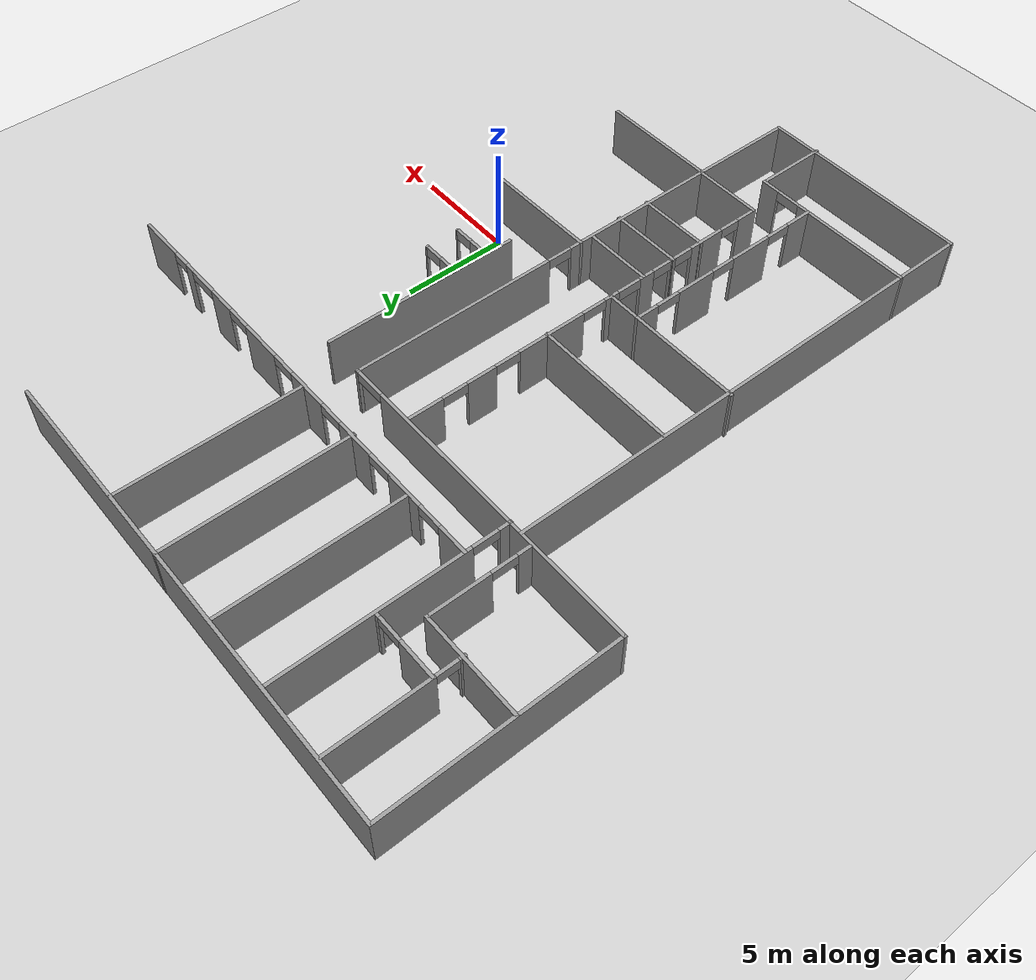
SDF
<sdf version="1.6">
 <world name="default">
  <model name="ground_plane">
   <static>1</static>
   <link name="link">
    <collision name="collision">
     <geometry><plane><normal>0 0 1</normal><size>100 100</size></plane></geometry>
     <surface><friction><ode><mu>100</mu><mu2>50</mu2></ode></friction></surface>
    </collision>
    <visual name="visual">
     <cast_shadows>0</cast_shadows>
     <geometry><plane><normal>0 0 1</normal><size>100 100</size></plane></geometry>
     <material>
      <script><uri>file://media/materials/scripts/gazebo.material</uri><name>Gazebo/Grey</name></script>
     </material>
    </visual>
   </link>
  </model>
  <model name="ed21">
   <pose>2.72337 5.84388 0 0 -0 0</pose>
   <link name="Wall_109">
    <pose>-3.95944 -3.32554 0 0 -0 0</pose>
    <visual name="Wall_109_Visual_0">
     <pose>-0.486206 0 1.25 0 -0 0</pose>
     <geometry><box><size>1.02759 0.15 2.5</size></box></geometry>
     <material>
      <script><uri>file://media/materials/scripts/gazebo.material</uri><name>Gazebo/Grey</name></script>
      <ambient>1 1 1 1</ambient>
     </material>
     <meta><layer>0</layer></meta>
    </visual>
    <collision name="Wall_109_Collision_0">
     <geometry><box><size>1.02759 0.15 2.5</size></box></geometry>
     <pose>-0.486206 0 1.25 0 -0 0</pose>
    </collision>
    <visual name="Wall_109_Visual_1">
     <pose>0.963794 0 1.25 0 -0 0</pose>
     <geometry><box><size>0.072411 0.15 2.5</size></box></geometry>
     <material>
      <script><uri>file://media/materials/scripts/gazebo.material</uri><name>Gazebo/Grey</name></script>
      <ambient>1 1 1 1</ambient>
     </material>
     <meta><layer>0</layer></meta>
    </visual>
    <collision name="Wall_109_Collision_1">
     <geometry><box><size>0.072411 0.15 2.5</size></box></geometry>
     <pose>0.963794 0 1.25 0 -0 0</pose>
    </collision>
    <visual name="Wall_109_Visual_2">
     <pose>0.477589 0 2.25 0 -0 0</pose>
     <geometry><box><size>0.9 0.15 0.5</size></box></geometry>
     <material>
      <script><uri>file://media/materials/scripts/gazebo.material</uri><name>Gazebo/Grey</name></script>
      <ambient>1 1 1 1</ambient>
     </material>
     <meta><layer>0</layer></meta>
    </visual>
    <collision name="Wall_109_Collision_2">
     <geometry><box><size>0.9 0.15 0.5</size></box></geometry>
     <pose>0.477589 0 2.25 0 -0 0</pose>
    </collision>
   </link>
   <link name="Wall_111">
    <pose>-3.95944 -1.68148 0 0 -0 0</pose>
    <visual name="Wall_111_Visual_0">
     <pose>-0.494901 0 1.25 0 -0 0</pose>
     <geometry><box><size>1.0102 0.15 2.5</size></box></geometry>
     <material>
      <script><uri>file://media/materials/scripts/gazebo.material</uri><name>Gazebo/Grey</name></script>
      <ambient>1 1 1 1</ambient>
     </material>
     <meta><layer>0</layer></meta>
    </visual>
    <collision name="Wall_111_Collision_0">
     <geometry><box><size>1.0102 0.15 2.5</size></box></geometry>
     <pose>-0.494901 0 1.25 0 -0 0</pose>
    </collision>
    <visual name="Wall_111_Visual_1">
     <pose>0.955099 0 1.25 0 -0 0</pose>
     <geometry><box><size>0.089803 0.15 2.5</size></box></geometry>
     <material>
      <script><uri>file://media/materials/scripts/gazebo.material</uri><name>Gazebo/Grey</name></script>
      <ambient>1 1 1 1</ambient>
     </material>
     <meta><layer>0</layer></meta>
    </visual>
    <collision name="Wall_111_Collision_1">
     <geometry><box><size>0.089803 0.15 2.5</size></box></geometry>
     <pose>0.955099 0 1.25 0 -0 0</pose>
    </collision>
    <visual name="Wall_111_Visual_2">
     <pose>0.460197 0 2.25 0 -0 0</pose>
     <geometry><box><size>0.9 0.15 0.5</size></box></geometry>
     <material>
      <script><uri>file://media/materials/scripts/gazebo.material</uri><name>Gazebo/Grey</name></script>
      <ambient>1 1 1 1</ambient>
     </material>
     <meta><layer>0</layer></meta>
    </visual>
    <collision name="Wall_111_Collision_2">
     <geometry><box><size>0.9 0.15 0.5</size></box></geometry>
     <pose>0.460197 0 2.25 0 -0 0</pose>
    </collision>
   </link>
   <link name="Wall_18">
    <collision name="Wall_18_Collision">
     <geometry><box><size>5.75 0.15 2.5</size></box></geometry>
     <pose>0 0 1.25 0 -0 0</pose>
    </collision>
    <visual name="Wall_18_Visual">
     <pose>0 0 1.25 0 -0 0</pose>
     <geometry><box><size>5.75 0.15 2.5</size></box></geometry>
     <material>
      <script><uri>file://media/materials/scripts/gazebo.material</uri><name>Gazebo/Grey</name></script>
      <ambient>1 1 1 1</ambient>
     </material>
     <meta><layer>0</layer></meta>
    </visual>
    <pose>-4.15144 -14.1344 0 0 -0 3.14159</pose>
   </link>
   <link name="Wall_2">
    <collision name="Wall_2_Collision">
     <geometry><box><size>10.25 0.15 2.5</size></box></geometry>
     <pose>0 0 1.25 0 -0 0</pose>
    </collision>
    <visual name="Wall_2_Visual">
     <pose>0 0 1.25 0 -0 0</pose>
     <geometry><box><size>10.25 0.15 2.5</size></box></geometry>
     <material>
      <script><uri>file://media/materials/scripts/gazebo.material</uri><name>Gazebo/Grey</name></script>
      <ambient>1 1 1 1</ambient>
     </material>
     <meta><layer>0</layer></meta>
    </visual>
    <pose>-12.0075 -19.1016 0 0 -0 0</pose>
   </link>
   <link name="Wall_23">
    <collision name="Wall_23_Collision">
     <geometry><box><size>5.75 0.15 2.5</size></box></geometry>
     <pose>0 0 1.25 0 -0 0</pose>
    </collision>
    <visual name="Wall_23_Visual">
     <pose>0 0 1.25 0 -0 0</pose>
     <geometry><box><size>5.75 0.15 2.5</size></box></geometry>
     <material>
      <script><uri>file://media/materials/scripts/gazebo.material</uri><name>Gazebo/Grey</name></script>
      <ambient>1 1 1 1</ambient>
     </material>
     <meta><layer>0</layer></meta>
    </visual>
    <pose>-4.15752 -6.90158 0 0 -0 3.14159</pose>
   </link>
   <link name="Wall_3">
    <pose>-6.95752 -7.17658 0 0 -0 1.5708</pose>
    <visual name="Wall_3_Visual_0">
     <pose>-5.57033 0 1.25 0 -0 0</pose>
     <geometry><box><size>12.8593 0.15 2.5</size></box></geometry>
     <material>
      <script><uri>file://media/materials/scripts/gazebo.material</uri><name>Gazebo/Grey</name></script>
      <ambient>1 1 1 1</ambient>
     </material>
     <meta><layer>0</layer></meta>
    </visual>
    <collision name="Wall_3_Collision_0">
     <geometry><box><size>12.8593 0.15 2.5</size></box></geometry>
     <pose>-5.57033 0 1.25 0 -0 0</pose>
    </collision>
    <visual name="Wall_3_Visual_1">
     <pose>7.02967 0 1.25 0 -0 0</pose>
     <geometry><box><size>9.94066 0.15 2.5</size></box></geometry>
     <material>
      <script><uri>file://media/materials/scripts/gazebo.material</uri><name>Gazebo/Grey</name></script>
      <ambient>1 1 1 1</ambient>
     </material>
     <meta><layer>0</layer></meta>
    </visual>
    <collision name="Wall_3_Collision_1">
     <geometry><box><size>9.94066 0.15 2.5</size></box></geometry>
     <pose>7.02967 0 1.25 0 -0 0</pose>
    </collision>
    <visual name="Wall_3_Visual_2">
     <pose>1.45934 0 2.25 0 -0 0</pose>
     <geometry><box><size>1.2 0.15 0.5</size></box></geometry>
     <material>
      <script><uri>file://media/materials/scripts/gazebo.material</uri><name>Gazebo/Grey</name></script>
      <ambient>1 1 1 1</ambient>
     </material>
     <meta><layer>0</layer></meta>
    </visual>
    <collision name="Wall_3_Collision_2">
     <geometry><box><size>1.2 0.15 0.5</size></box></geometry>
     <pose>1.45934 0 2.25 0 -0 0</pose>
    </collision>
   </link>
   <link name="Wall_31">
    <collision name="Wall_31_Collision">
     <geometry><box><size>24 0.15 2.5</size></box></geometry>
     <pose>0 0 1.25 0 -0 0</pose>
    </collision>
    <visual name="Wall_31_Visual">
     <pose>0 0 1.25 0 -0 0</pose>
     <geometry><box><size>24 0.15 2.5</size></box></geometry>
     <material>
      <script><uri>file://media/materials/scripts/gazebo.material</uri><name>Gazebo/Grey</name></script>
      <ambient>1 1 1 1</ambient>
     </material>
     <meta><layer>0</layer></meta>
    </visual>
    <pose>-17.0575 -7.17658 0 0 -0 1.5708</pose>
   </link>
   <link name="Wall_33">
    <pose>-13.1325 -15.8484 0 0 -0 0</pose>
    <visual name="Wall_33_Visual_0">
     <pose>-1.06245 0 1.25 0 -0 0</pose>
     <geometry><box><size>5.8751 0.15 2.5</size></box></geometry>
     <material>
      <script><uri>file://media/materials/scripts/gazebo.material</uri><name>Gazebo/Grey</name></script>
      <ambient>1 1 1 1</ambient>
     </material>
     <meta><layer>0</layer></meta>
    </visual>
    <collision name="Wall_33_Collision_0">
     <geometry><box><size>5.8751 0.15 2.5</size></box></geometry>
     <pose>-1.06245 0 1.25 0 -0 0</pose>
    </collision>
    <visual name="Wall_33_Visual_1">
     <pose>3.53755 0 1.25 0 -0 0</pose>
     <geometry><box><size>0.924895 0.15 2.5</size></box></geometry>
     <material>
      <script><uri>file://media/materials/scripts/gazebo.material</uri><name>Gazebo/Grey</name></script>
      <ambient>1 1 1 1</ambient>
     </material>
     <meta><layer>0</layer></meta>
    </visual>
    <collision name="Wall_33_Collision_1">
     <geometry><box><size>0.924895 0.15 2.5</size></box></geometry>
     <pose>3.53755 0 1.25 0 -0 0</pose>
    </collision>
    <visual name="Wall_33_Visual_2">
     <pose>2.47511 0 2.25 0 -0 0</pose>
     <geometry><box><size>1.2 0.15 0.5</size></box></geometry>
     <material>
      <script><uri>file://media/materials/scripts/gazebo.material</uri><name>Gazebo/Grey</name></script>
      <ambient>1 1 1 1</ambient>
     </material>
     <meta><layer>0</layer></meta>
    </visual>
    <collision name="Wall_33_Collision_2">
     <geometry><box><size>1.2 0.15 0.5</size></box></geometry>
     <pose>2.47511 0 2.25 0 -0 0</pose>
    </collision>
   </link>
   <link name="Wall_34">
    <collision name="Wall_34_Collision">
     <geometry><box><size>3.5 0.15 2.5</size></box></geometry>
     <pose>0 0 1.25 0 -0 0</pose>
    </collision>
    <visual name="Wall_34_Visual">
     <pose>0 0 1.25 0 -0 0</pose>
     <geometry><box><size>3.5 0.15 2.5</size></box></geometry>
     <material>
      <script><uri>file://media/materials/scripts/gazebo.material</uri><name>Gazebo/Grey</name></script>
      <ambient>1 1 1 1</ambient>
     </material>
     <meta><layer>0</layer></meta>
    </visual>
    <pose>-9.20752 -17.5234 0 0 0 -1.5708</pose>
   </link>
   <link name="Wall_36">
    <pose>-11.8105 -10.7984 0 0 -0 1.5708</pose>
    <visual name="Wall_36_Visual_0">
     <pose>-4.43495 0 1.25 0 -0 0</pose>
     <geometry><box><size>1.3801 0.15 2.5</size></box></geometry>
     <material>
      <script><uri>file://media/materials/scripts/gazebo.material</uri><name>Gazebo/Grey</name></script>
      <ambient>1 1 1 1</ambient>
     </material>
     <meta><layer>0</layer></meta>
    </visual>
    <collision name="Wall_36_Collision_0">
     <geometry><box><size>1.3801 0.15 2.5</size></box></geometry>
     <pose>-4.43495 0 1.25 0 -0 0</pose>
    </collision>
    <visual name="Wall_36_Visual_1">
     <pose>-1.48402 0 1.25 0 -0 0</pose>
     <geometry><box><size>2.12174 0.15 2.5</size></box></geometry>
     <material>
      <script><uri>file://media/materials/scripts/gazebo.material</uri><name>Gazebo/Grey</name></script>
      <ambient>1 1 1 1</ambient>
     </material>
     <meta><layer>0</layer></meta>
    </visual>
    <collision name="Wall_36_Collision_1">
     <geometry><box><size>2.12174 0.15 2.5</size></box></geometry>
     <pose>-1.48402 0 1.25 0 -0 0</pose>
    </collision>
    <visual name="Wall_36_Visual_2">
     <pose>1.75945 0 1.25 0 -0 0</pose>
     <geometry><box><size>1.96522 0.15 2.5</size></box></geometry>
     <material>
      <script><uri>file://media/materials/scripts/gazebo.material</uri><name>Gazebo/Grey</name></script>
      <ambient>1 1 1 1</ambient>
     </material>
     <meta><layer>0</layer></meta>
    </visual>
    <collision name="Wall_36_Collision_2">
     <geometry><box><size>1.96522 0.15 2.5</size></box></geometry>
     <pose>1.75945 0 1.25 0 -0 0</pose>
    </collision>
    <visual name="Wall_36_Visual_3">
     <pose>4.53353 0 1.25 0 -0 0</pose>
     <geometry><box><size>1.18294 0.15 2.5</size></box></geometry>
     <material>
      <script><uri>file://media/materials/scripts/gazebo.material</uri><name>Gazebo/Grey</name></script>
      <ambient>1 1 1 1</ambient>
     </material>
     <meta><layer>0</layer></meta>
    </visual>
    <collision name="Wall_36_Collision_3">
     <geometry><box><size>1.18294 0.15 2.5</size></box></geometry>
     <pose>4.53353 0 1.25 0 -0 0</pose>
    </collision>
    <visual name="Wall_36_Visual_4">
     <pose>-3.14489 0 2.25 0 -0 0</pose>
     <geometry><box><size>1.2 0.15 0.5</size></box></geometry>
     <material>
      <script><uri>file://media/materials/scripts/gazebo.material</uri><name>Gazebo/Grey</name></script>
      <ambient>1 1 1 1</ambient>
     </material>
     <meta><layer>0</layer></meta>
    </visual>
    <collision name="Wall_36_Collision_4">
     <geometry><box><size>1.2 0.15 0.5</size></box></geometry>
     <pose>-3.14489 0 2.25 0 -0 0</pose>
    </collision>
    <visual name="Wall_36_Visual_5">
     <pose>0.176845 0 2.25 0 -0 0</pose>
     <geometry><box><size>1.2 0.15 0.5</size></box></geometry>
     <material>
      <script><uri>file://media/materials/scripts/gazebo.material</uri><name>Gazebo/Grey</name></script>
      <ambient>1 1 1 1</ambient>
     </material>
     <meta><layer>0</layer></meta>
    </visual>
    <collision name="Wall_36_Collision_5">
     <geometry><box><size>1.2 0.15 0.5</size></box></geometry>
     <pose>0.176845 0 2.25 0 -0 0</pose>
    </collision>
    <visual name="Wall_36_Visual_6">
     <pose>3.34206 0 2.25 0 -0 0</pose>
     <geometry><box><size>1.2 0.15 0.5</size></box></geometry>
     <material>
      <script><uri>file://media/materials/scripts/gazebo.material</uri><name>Gazebo/Grey</name></script>
      <ambient>1 1 1 1</ambient>
     </material>
     <meta><layer>0</layer></meta>
    </visual>
    <collision name="Wall_36_Collision_6">
     <geometry><box><size>1.2 0.15 0.5</size></box></geometry>
     <pose>3.34206 0 2.25 0 -0 0</pose>
    </collision>
   </link>
   <link name="Wall_37">
    <collision name="Wall_37_Collision">
     <geometry><box><size>5.5 0.15 2.5</size></box></geometry>
     <pose>0 0 1.25 0 -0 0</pose>
    </collision>
    <visual name="Wall_37_Visual">
     <pose>0 0 1.25 0 -0 0</pose>
     <geometry><box><size>5.5 0.15 2.5</size></box></geometry>
     <material>
      <script><uri>file://media/materials/scripts/gazebo.material</uri><name>Gazebo/Grey</name></script>
      <ambient>1 1 1 1</ambient>
     </material>
     <meta><layer>0</layer></meta>
    </visual>
    <pose>-14.4855 -5.74843 0 0 -0 3.14159</pose>
   </link>
   <link name="Wall_39">
    <collision name="Wall_39_Collision">
     <geometry><box><size>1.75 0.15 2.5</size></box></geometry>
     <pose>0 0 1.25 0 -0 0</pose>
    </collision>
    <visual name="Wall_39_Visual">
     <pose>0 0 1.25 0 -0 0</pose>
     <geometry><box><size>1.75 0.15 2.5</size></box></geometry>
     <material>
      <script><uri>file://media/materials/scripts/gazebo.material</uri><name>Gazebo/Grey</name></script>
      <ambient>1 1 1 1</ambient>
     </material>
     <meta><layer>0</layer></meta>
    </visual>
    <pose>-11.0105 -5.74843 0 0 -0 0</pose>
   </link>
   <link name="Wall_4">
    <pose>-14.7575 4.74842 0 0 -0 3.14159</pose>
    <visual name="Wall_4_Visual_0">
     <pose>-7.79734 0 1.25 0 -0 0</pose>
     <geometry><box><size>0.15533 0.15 2.5</size></box></geometry>
     <material>
      <script><uri>file://media/materials/scripts/gazebo.material</uri><name>Gazebo/Grey</name></script>
      <ambient>1 1 1 1</ambient>
     </material>
     <meta><layer>0</layer></meta>
    </visual>
    <collision name="Wall_4_Collision_0">
     <geometry><box><size>0.15533 0.15 2.5</size></box></geometry>
     <pose>-7.79734 0 1.25 0 -0 0</pose>
    </collision>
    <visual name="Wall_4_Visual_1">
     <pose>0.827665 0 1.25 0 -0 0</pose>
     <geometry><box><size>14.0947 0.15 2.5</size></box></geometry>
     <material>
      <script><uri>file://media/materials/scripts/gazebo.material</uri><name>Gazebo/Grey</name></script>
      <ambient>1 1 1 1</ambient>
     </material>
     <meta><layer>0</layer></meta>
    </visual>
    <collision name="Wall_4_Collision_1">
     <geometry><box><size>14.0947 0.15 2.5</size></box></geometry>
     <pose>0.827665 0 1.25 0 -0 0</pose>
    </collision>
    <visual name="Wall_4_Visual_2">
     <pose>-6.96967 0 2.25 0 -0 0</pose>
     <geometry><box><size>1.5 0.15 0.5</size></box></geometry>
     <material>
      <script><uri>file://media/materials/scripts/gazebo.material</uri><name>Gazebo/Grey</name></script>
      <ambient>1 1 1 1</ambient>
     </material>
     <meta><layer>0</layer></meta>
    </visual>
    <collision name="Wall_4_Collision_2">
     <geometry><box><size>1.5 0.15 0.5</size></box></geometry>
     <pose>-6.96967 0 2.25 0 -0 0</pose>
    </collision>
   </link>
   <link name="Wall_40">
    <pose>-10.2105 -9.92343 0 0 0 -1.5708</pose>
    <visual name="Wall_40_Visual_0">
     <pose>-4.01505 0 1.25 0 -0 0</pose>
     <geometry><box><size>0.469895 0.15 2.5</size></box></geometry>
     <material>
      <script><uri>file://media/materials/scripts/gazebo.material</uri><name>Gazebo/Grey</name></script>
      <ambient>1 1 1 1</ambient>
     </material>
     <meta><layer>0</layer></meta>
    </visual>
    <collision name="Wall_40_Collision_0">
     <geometry><box><size>0.469895 0.15 2.5</size></box></geometry>
     <pose>-4.01505 0 1.25 0 -0 0</pose>
    </collision>
    <visual name="Wall_40_Visual_1">
     <pose>-2.19967 0 1.25 0 -0 0</pose>
     <geometry><box><size>0.760869 0.15 2.5</size></box></geometry>
     <material>
      <script><uri>file://media/materials/scripts/gazebo.material</uri><name>Gazebo/Grey</name></script>
      <ambient>1 1 1 1</ambient>
     </material>
     <meta><layer>0</layer></meta>
    </visual>
    <collision name="Wall_40_Collision_1">
     <geometry><box><size>0.760869 0.15 2.5</size></box></geometry>
     <pose>-2.19967 0 1.25 0 -0 0</pose>
    </collision>
    <visual name="Wall_40_Visual_2">
     <pose>-0.719236 0 1.25 0 -0 0</pose>
     <geometry><box><size>0.2 0.15 2.5</size></box></geometry>
     <material>
      <script><uri>file://media/materials/scripts/gazebo.material</uri><name>Gazebo/Grey</name></script>
      <ambient>1 1 1 1</ambient>
     </material>
     <meta><layer>0</layer></meta>
    </visual>
    <collision name="Wall_40_Collision_2">
     <geometry><box><size>0.2 0.15 2.5</size></box></geometry>
     <pose>-0.719236 0 1.25 0 -0 0</pose>
    </collision>
    <visual name="Wall_40_Visual_3">
     <pose>1.28076 0 1.25 0 -0 0</pose>
     <geometry><box><size>1.8 0.15 2.5</size></box></geometry>
     <material>
      <script><uri>file://media/materials/scripts/gazebo.material</uri><name>Gazebo/Grey</name></script>
      <ambient>1 1 1 1</ambient>
     </material>
     <meta><layer>0</layer></meta>
    </visual>
    <collision name="Wall_40_Collision_3">
     <geometry><box><size>1.8 0.15 2.5</size></box></geometry>
     <pose>1.28076 0 1.25 0 -0 0</pose>
    </collision>
    <visual name="Wall_40_Visual_4">
     <pose>3.71538 0 1.25 0 -0 0</pose>
     <geometry><box><size>1.06924 0.15 2.5</size></box></geometry>
     <material>
      <script><uri>file://media/materials/scripts/gazebo.material</uri><name>Gazebo/Grey</name></script>
      <ambient>1 1 1 1</ambient>
     </material>
     <meta><layer>0</layer></meta>
    </visual>
    <collision name="Wall_40_Collision_4">
     <geometry><box><size>1.06924 0.15 2.5</size></box></geometry>
     <pose>3.71538 0 1.25 0 -0 0</pose>
    </collision>
    <visual name="Wall_40_Visual_5">
     <pose>-3.18011 0 2.25 0 -0 0</pose>
     <geometry><box><size>1.2 0.15 0.5</size></box></geometry>
     <material>
      <script><uri>file://media/materials/scripts/gazebo.material</uri><name>Gazebo/Grey</name></script>
      <ambient>1 1 1 1</ambient>
     </material>
     <meta><layer>0</layer></meta>
    </visual>
    <collision name="Wall_40_Collision_5">
     <geometry><box><size>1.2 0.15 0.5</size></box></geometry>
     <pose>-3.18011 0 2.25 0 -0 0</pose>
    </collision>
    <visual name="Wall_40_Visual_6">
     <pose>-1.31924 0 2.25 0 -0 0</pose>
     <geometry><box><size>1 0.15 0.5</size></box></geometry>
     <material>
      <script><uri>file://media/materials/scripts/gazebo.material</uri><name>Gazebo/Grey</name></script>
      <ambient>1 1 1 1</ambient>
     </material>
     <meta><layer>0</layer></meta>
    </visual>
    <collision name="Wall_40_Collision_6">
     <geometry><box><size>1 0.15 0.5</size></box></geometry>
     <pose>-1.31924 0 2.25 0 -0 0</pose>
    </collision>
    <visual name="Wall_40_Visual_7">
     <pose>-0.119236 0 2.25 0 -0 0</pose>
     <geometry><box><size>1 0.15 0.5</size></box></geometry>
     <material>
      <script><uri>file://media/materials/scripts/gazebo.material</uri><name>Gazebo/Grey</name></script>
      <ambient>1 1 1 1</ambient>
     </material>
     <meta><layer>0</layer></meta>
    </visual>
    <collision name="Wall_40_Collision_7">
     <geometry><box><size>1 0.15 0.5</size></box></geometry>
     <pose>-0.119236 0 2.25 0 -0 0</pose>
    </collision>
    <visual name="Wall_40_Visual_8">
     <pose>2.68076 0 2.25 0 -0 0</pose>
     <geometry><box><size>1 0.15 0.5</size></box></geometry>
     <material>
      <script><uri>file://media/materials/scripts/gazebo.material</uri><name>Gazebo/Grey</name></script>
      <ambient>1 1 1 1</ambient>
     </material>
     <meta><layer>0</layer></meta>
    </visual>
    <collision name="Wall_40_Collision_8">
     <geometry><box><size>1 0.15 0.5</size></box></geometry>
     <pose>2.68076 0 2.25 0 -0 0</pose>
    </collision>
   </link>
   <link name="Wall_41">
    <collision name="Wall_41_Collision">
     <geometry><box><size>3.5 0.15 2.5</size></box></geometry>
     <pose>0 0 1.25 0 -0 0</pose>
    </collision>
    <visual name="Wall_41_Visual">
     <pose>0 0 1.25 0 -0 0</pose>
     <geometry><box><size>3.5 0.15 2.5</size></box></geometry>
     <material>
      <script><uri>file://media/materials/scripts/gazebo.material</uri><name>Gazebo/Grey</name></script>
      <ambient>1 1 1 1</ambient>
     </material>
     <meta><layer>0</layer></meta>
    </visual>
    <pose>-8.5355 -14.0984 0 0 -0 0</pose>
   </link>
   <link name="Wall_43">
    <collision name="Wall_43_Collision">
     <geometry><box><size>3.5 0.15 2.5</size></box></geometry>
     <pose>0 0 1.25 0 -0 0</pose>
    </collision>
    <visual name="Wall_43_Visual">
     <pose>0 0 1.25 0 -0 0</pose>
     <geometry><box><size>3.5 0.15 2.5</size></box></geometry>
     <material>
      <script><uri>file://media/materials/scripts/gazebo.material</uri><name>Gazebo/Grey</name></script>
      <ambient>1 1 1 1</ambient>
     </material>
     <meta><layer>0</layer></meta>
    </visual>
    <pose>-8.5614 -10.8463 0 0 -0 0</pose>
   </link>
   <link name="Wall_45">
    <collision name="Wall_45_Collision">
     <geometry><box><size>3.5 0.15 2.5</size></box></geometry>
     <pose>0 0 1.25 0 -0 0</pose>
    </collision>
    <visual name="Wall_45_Visual">
     <pose>0 0 1.25 0 -0 0</pose>
     <geometry><box><size>3.5 0.15 2.5</size></box></geometry>
     <material>
      <script><uri>file://media/materials/scripts/gazebo.material</uri><name>Gazebo/Grey</name></script>
      <ambient>1 1 1 1</ambient>
     </material>
     <meta><layer>0</layer></meta>
    </visual>
    <pose>-8.5614 -9.23718 0 0 -0 0</pose>
   </link>
   <link name="Wall_47">
    <collision name="Wall_47_Collision">
     <geometry><box><size>3.25 0.15 2.5</size></box></geometry>
     <pose>0 0 1.25 0 -0 0</pose>
    </collision>
    <visual name="Wall_47_Visual">
     <pose>0 0 1.25 0 -0 0</pose>
     <geometry><box><size>3.25 0.15 2.5</size></box></geometry>
     <material>
      <script><uri>file://media/materials/scripts/gazebo.material</uri><name>Gazebo/Grey</name></script>
      <ambient>1 1 1 1</ambient>
     </material>
     <meta><layer>0</layer></meta>
    </visual>
    <pose>-8.65142 -7.55814 0 0 -0 0</pose>
   </link>
   <link name="Wall_49">
    <pose>-10.2105 -0.573425 0 0 -0 1.5708</pose>
    <visual name="Wall_49_Visual_0">
     <pose>-5.03603 0 1.25 0 -0 0</pose>
     <geometry><box><size>0.427931 0.15 2.5</size></box></geometry>
     <material>
      <script><uri>file://media/materials/scripts/gazebo.material</uri><name>Gazebo/Grey</name></script>
      <ambient>1 1 1 1</ambient>
     </material>
     <meta><layer>0</layer></meta>
    </visual>
    <collision name="Wall_49_Collision_0">
     <geometry><box><size>0.427931 0.15 2.5</size></box></geometry>
     <pose>-5.03603 0 1.25 0 -0 0</pose>
    </collision>
    <visual name="Wall_49_Visual_1">
     <pose>-1.92642 0 1.25 0 -0 0</pose>
     <geometry><box><size>3.3913 0.15 2.5</size></box></geometry>
     <material>
      <script><uri>file://media/materials/scripts/gazebo.material</uri><name>Gazebo/Grey</name></script>
      <ambient>1 1 1 1</ambient>
     </material>
     <meta><layer>0</layer></meta>
    </visual>
    <collision name="Wall_49_Collision_1">
     <geometry><box><size>3.3913 0.15 2.5</size></box></geometry>
     <pose>-1.92642 0 1.25 0 -0 0</pose>
    </collision>
    <visual name="Wall_49_Visual_2">
     <pose>1.69097 0 1.25 0 -0 0</pose>
     <geometry><box><size>1.44348 0.15 2.5</size></box></geometry>
     <material>
      <script><uri>file://media/materials/scripts/gazebo.material</uri><name>Gazebo/Grey</name></script>
      <ambient>1 1 1 1</ambient>
     </material>
     <meta><layer>0</layer></meta>
    </visual>
    <collision name="Wall_49_Collision_2">
     <geometry><box><size>1.44348 0.15 2.5</size></box></geometry>
     <pose>1.69097 0 1.25 0 -0 0</pose>
    </collision>
    <visual name="Wall_49_Visual_3">
     <pose>4.43136 0 1.25 0 -0 0</pose>
     <geometry><box><size>1.63729 0.15 2.5</size></box></geometry>
     <material>
      <script><uri>file://media/materials/scripts/gazebo.material</uri><name>Gazebo/Grey</name></script>
      <ambient>1 1 1 1</ambient>
     </material>
     <meta><layer>0</layer></meta>
    </visual>
    <collision name="Wall_49_Collision_3">
     <geometry><box><size>1.63729 0.15 2.5</size></box></geometry>
     <pose>4.43136 0 1.25 0 -0 0</pose>
    </collision>
    <visual name="Wall_49_Visual_4">
     <pose>-4.22207 0 2.25 0 -0 0</pose>
     <geometry><box><size>1.2 0.15 0.5</size></box></geometry>
     <material>
      <script><uri>file://media/materials/scripts/gazebo.material</uri><name>Gazebo/Grey</name></script>
      <ambient>1 1 1 1</ambient>
     </material>
     <meta><layer>0</layer></meta>
    </visual>
    <collision name="Wall_49_Collision_4">
     <geometry><box><size>1.2 0.15 0.5</size></box></geometry>
     <pose>-4.22207 0 2.25 0 -0 0</pose>
    </collision>
    <visual name="Wall_49_Visual_5">
     <pose>0.369235 0 2.25 0 -0 0</pose>
     <geometry><box><size>1.2 0.15 0.5</size></box></geometry>
     <material>
      <script><uri>file://media/materials/scripts/gazebo.material</uri><name>Gazebo/Grey</name></script>
      <ambient>1 1 1 1</ambient>
     </material>
     <meta><layer>0</layer></meta>
    </visual>
    <collision name="Wall_49_Collision_5">
     <geometry><box><size>1.2 0.15 0.5</size></box></geometry>
     <pose>0.369235 0 2.25 0 -0 0</pose>
    </collision>
    <visual name="Wall_49_Visual_6">
     <pose>3.01271 0 2.25 0 -0 0</pose>
     <geometry><box><size>1.2 0.15 0.5</size></box></geometry>
     <material>
      <script><uri>file://media/materials/scripts/gazebo.material</uri><name>Gazebo/Grey</name></script>
      <ambient>1 1 1 1</ambient>
     </material>
     <meta><layer>0</layer></meta>
    </visual>
    <collision name="Wall_49_Collision_6">
     <geometry><box><size>1.2 0.15 0.5</size></box></geometry>
     <pose>3.01271 0 2.25 0 -0 0</pose>
    </collision>
   </link>
   <link name="Wall_5">
    <collision name="Wall_5_Collision">
     <geometry><box><size>10.75 0.15 2.5</size></box></geometry>
     <pose>0 0 1.25 0 -0 0</pose>
    </collision>
    <visual name="Wall_5_Visual">
     <pose>0 0 1.25 0 -0 0</pose>
     <geometry><box><size>10.75 0.15 2.5</size></box></geometry>
     <material>
      <script><uri>file://media/materials/scripts/gazebo.material</uri><name>Gazebo/Grey</name></script>
      <ambient>1 1 1 1</ambient>
     </material>
     <meta><layer>0</layer></meta>
    </visual>
    <pose>-22.5575 10.0484 0 0 -0 1.5708</pose>
   </link>
   <link name="Wall_51">
    <collision name="Wall_51_Collision">
     <geometry><box><size>7 0.15 2.5</size></box></geometry>
     <pose>0 0 1.25 0 -0 0</pose>
    </collision>
    <visual name="Wall_51_Visual">
     <pose>0 0 1.25 0 -0 0</pose>
     <geometry><box><size>7 0.15 2.5</size></box></geometry>
     <material>
      <script><uri>file://media/materials/scripts/gazebo.material</uri><name>Gazebo/Grey</name></script>
      <ambient>1 1 1 1</ambient>
     </material>
     <meta><layer>0</layer></meta>
    </visual>
    <pose>-13.5975 -2.31112 0 0 -0 0</pose>
   </link>
   <link name="Wall_53">
    <pose>-16.4279 10.0199 0 0 -0 1.5708</pose>
    <visual name="Wall_53_Visual_0">
     <pose>-5.05606 0 1.25 0 -0 0</pose>
     <geometry><box><size>0.637879 0.15 2.5</size></box></geometry>
     <material>
      <script><uri>file://media/materials/scripts/gazebo.material</uri><name>Gazebo/Grey</name></script>
      <ambient>1 1 1 1</ambient>
     </material>
     <meta><layer>0</layer></meta>
    </visual>
    <collision name="Wall_53_Collision_0">
     <geometry><box><size>0.637879 0.15 2.5</size></box></geometry>
     <pose>-5.05606 0 1.25 0 -0 0</pose>
    </collision>
    <visual name="Wall_53_Visual_1">
     <pose>0.918939 0 1.25 0 -0 0</pose>
     <geometry><box><size>8.91212 0.15 2.5</size></box></geometry>
     <material>
      <script><uri>file://media/materials/scripts/gazebo.material</uri><name>Gazebo/Grey</name></script>
      <ambient>1 1 1 1</ambient>
     </material>
     <meta><layer>0</layer></meta>
    </visual>
    <collision name="Wall_53_Collision_1">
     <geometry><box><size>8.91212 0.15 2.5</size></box></geometry>
     <pose>0.918939 0 1.25 0 -0 0</pose>
    </collision>
    <visual name="Wall_53_Visual_2">
     <pose>-4.13712 0 2.25 0 -0 0</pose>
     <geometry><box><size>1.2 0.15 0.5</size></box></geometry>
     <material>
      <script><uri>file://media/materials/scripts/gazebo.material</uri><name>Gazebo/Grey</name></script>
      <ambient>1 1 1 1</ambient>
     </material>
     <meta><layer>0</layer></meta>
    </visual>
    <collision name="Wall_53_Collision_2">
     <geometry><box><size>1.2 0.15 0.5</size></box></geometry>
     <pose>-4.13712 0 2.25 0 -0 0</pose>
    </collision>
   </link>
   <link name="Wall_55">
    <pose>-5.37788 6.8187 0 0 -0 0</pose>
    <visual name="Wall_55_Visual_0">
     <pose>-10.3544 0 1.25 0 -0 0</pose>
     <geometry><box><size>1.54112 0.15 2.5</size></box></geometry>
     <material>
      <script><uri>file://media/materials/scripts/gazebo.material</uri><name>Gazebo/Grey</name></script>
      <ambient>1 1 1 1</ambient>
     </material>
     <meta><layer>0</layer></meta>
    </visual>
    <collision name="Wall_55_Collision_0">
     <geometry><box><size>1.54112 0.15 2.5</size></box></geometry>
     <pose>-10.3544 0 1.25 0 -0 0</pose>
    </collision>
    <visual name="Wall_55_Visual_1">
     <pose>-7.44475 0 1.25 0 -0 0</pose>
     <geometry><box><size>1.87826 0.15 2.5</size></box></geometry>
     <material>
      <script><uri>file://media/materials/scripts/gazebo.material</uri><name>Gazebo/Grey</name></script>
      <ambient>1 1 1 1</ambient>
     </material>
     <meta><layer>0</layer></meta>
    </visual>
    <collision name="Wall_55_Collision_1">
     <geometry><box><size>1.87826 0.15 2.5</size></box></geometry>
     <pose>-7.44475 0 1.25 0 -0 0</pose>
    </collision>
    <visual name="Wall_55_Visual_2">
     <pose>-4.31432 0 1.25 0 -0 0</pose>
     <geometry><box><size>1.98261 0.15 2.5</size></box></geometry>
     <material>
      <script><uri>file://media/materials/scripts/gazebo.material</uri><name>Gazebo/Grey</name></script>
      <ambient>1 1 1 1</ambient>
     </material>
     <meta><layer>0</layer></meta>
    </visual>
    <collision name="Wall_55_Collision_2">
     <geometry><box><size>1.98261 0.15 2.5</size></box></geometry>
     <pose>-4.31432 0 1.25 0 -0 0</pose>
    </collision>
    <visual name="Wall_55_Visual_3">
     <pose>-1.07954 0 1.25 0 -0 0</pose>
     <geometry><box><size>2.08696 0.15 2.5</size></box></geometry>
     <material>
      <script><uri>file://media/materials/scripts/gazebo.material</uri><name>Gazebo/Grey</name></script>
      <ambient>1 1 1 1</ambient>
     </material>
     <meta><layer>0</layer></meta>
    </visual>
    <collision name="Wall_55_Collision_3">
     <geometry><box><size>2.08696 0.15 2.5</size></box></geometry>
     <pose>-1.07954 0 1.25 0 -0 0</pose>
    </collision>
    <visual name="Wall_55_Visual_4">
     <pose>2.21611 0 1.25 0 -0 0</pose>
     <geometry><box><size>2.10435 0.15 2.5</size></box></geometry>
     <material>
      <script><uri>file://media/materials/scripts/gazebo.material</uri><name>Gazebo/Grey</name></script>
      <ambient>1 1 1 1</ambient>
     </material>
     <meta><layer>0</layer></meta>
    </visual>
    <collision name="Wall_55_Collision_4">
     <geometry><box><size>2.10435 0.15 2.5</size></box></geometry>
     <pose>2.21611 0 1.25 0 -0 0</pose>
    </collision>
    <visual name="Wall_55_Visual_5">
     <pose>5.1759 0 1.25 0 -0 0</pose>
     <geometry><box><size>1.41522 0.15 2.5</size></box></geometry>
     <material>
      <script><uri>file://media/materials/scripts/gazebo.material</uri><name>Gazebo/Grey</name></script>
      <ambient>1 1 1 1</ambient>
     </material>
     <meta><layer>0</layer></meta>
    </visual>
    <collision name="Wall_55_Collision_5">
     <geometry><box><size>1.41522 0.15 2.5</size></box></geometry>
     <pose>5.1759 0 1.25 0 -0 0</pose>
    </collision>
    <visual name="Wall_55_Visual_6">
     <pose>7.65307 0 1.25 0 -0 0</pose>
     <geometry><box><size>0.53913 0.15 2.5</size></box></geometry>
     <material>
      <script><uri>file://media/materials/scripts/gazebo.material</uri><name>Gazebo/Grey</name></script>
      <ambient>1 1 1 1</ambient>
     </material>
     <meta><layer>0</layer></meta>
    </visual>
    <collision name="Wall_55_Collision_6">
     <geometry><box><size>0.53913 0.15 2.5</size></box></geometry>
     <pose>7.65307 0 1.25 0 -0 0</pose>
    </collision>
    <visual name="Wall_55_Visual_7">
     <pose>9.97382 0 1.25 0 -0 0</pose>
     <geometry><box><size>2.30236 0.15 2.5</size></box></geometry>
     <material>
      <script><uri>file://media/materials/scripts/gazebo.material</uri><name>Gazebo/Grey</name></script>
      <ambient>1 1 1 1</ambient>
     </material>
     <meta><layer>0</layer></meta>
    </visual>
    <collision name="Wall_55_Collision_7">
     <geometry><box><size>2.30236 0.15 2.5</size></box></geometry>
     <pose>9.97382 0 1.25 0 -0 0</pose>
    </collision>
    <visual name="Wall_55_Visual_8">
     <pose>-8.98389 0 2.25 0 -0 0</pose>
     <geometry><box><size>1.2 0.15 0.5</size></box></geometry>
     <material>
      <script><uri>file://media/materials/scripts/gazebo.material</uri><name>Gazebo/Grey</name></script>
      <ambient>1 1 1 1</ambient>
     </material>
     <meta><layer>0</layer></meta>
    </visual>
    <collision name="Wall_55_Collision_8">
     <geometry><box><size>1.2 0.15 0.5</size></box></geometry>
     <pose>-8.98389 0 2.25 0 -0 0</pose>
    </collision>
    <visual name="Wall_55_Visual_9">
     <pose>-5.90562 0 2.25 0 -0 0</pose>
     <geometry><box><size>1.2 0.15 0.5</size></box></geometry>
     <material>
      <script><uri>file://media/materials/scripts/gazebo.material</uri><name>Gazebo/Grey</name></script>
      <ambient>1 1 1 1</ambient>
     </material>
     <meta><layer>0</layer></meta>
    </visual>
    <collision name="Wall_55_Collision_9">
     <geometry><box><size>1.2 0.15 0.5</size></box></geometry>
     <pose>-5.90562 0 2.25 0 -0 0</pose>
    </collision>
    <visual name="Wall_55_Visual_10">
     <pose>-2.72302 0 2.25 0 -0 0</pose>
     <geometry><box><size>1.2 0.15 0.5</size></box></geometry>
     <material>
      <script><uri>file://media/materials/scripts/gazebo.material</uri><name>Gazebo/Grey</name></script>
      <ambient>1 1 1 1</ambient>
     </material>
     <meta><layer>0</layer></meta>
    </visual>
    <collision name="Wall_55_Collision_10">
     <geometry><box><size>1.2 0.15 0.5</size></box></geometry>
     <pose>-2.72302 0 2.25 0 -0 0</pose>
    </collision>
    <visual name="Wall_55_Visual_11">
     <pose>0.563941 0 2.25 0 -0 0</pose>
     <geometry><box><size>1.2 0.15 0.5</size></box></geometry>
     <material>
      <script><uri>file://media/materials/scripts/gazebo.material</uri><name>Gazebo/Grey</name></script>
      <ambient>1 1 1 1</ambient>
     </material>
     <meta><layer>0</layer></meta>
    </visual>
    <collision name="Wall_55_Collision_11">
     <geometry><box><size>1.2 0.15 0.5</size></box></geometry>
     <pose>0.563941 0 2.25 0 -0 0</pose>
    </collision>
    <visual name="Wall_55_Visual_12">
     <pose>3.86829 0 2.25 0 -0 0</pose>
     <geometry><box><size>1.2 0.15 0.5</size></box></geometry>
     <material>
      <script><uri>file://media/materials/scripts/gazebo.material</uri><name>Gazebo/Grey</name></script>
      <ambient>1 1 1 1</ambient>
     </material>
     <meta><layer>0</layer></meta>
    </visual>
    <collision name="Wall_55_Collision_12">
     <geometry><box><size>1.2 0.15 0.5</size></box></geometry>
     <pose>3.86829 0 2.25 0 -0 0</pose>
    </collision>
    <visual name="Wall_55_Visual_13">
     <pose>6.63351 0 2.25 0 -0 0</pose>
     <geometry><box><size>1.5 0.15 0.5</size></box></geometry>
     <material>
      <script><uri>file://media/materials/scripts/gazebo.material</uri><name>Gazebo/Grey</name></script>
      <ambient>1 1 1 1</ambient>
     </material>
     <meta><layer>0</layer></meta>
    </visual>
    <collision name="Wall_55_Collision_13">
     <geometry><box><size>1.5 0.15 0.5</size></box></geometry>
     <pose>6.63351 0 2.25 0 -0 0</pose>
    </collision>
    <visual name="Wall_55_Visual_14">
     <pose>8.37264 0 2.25 0 -0 0</pose>
     <geometry><box><size>0.9 0.15 0.5</size></box></geometry>
     <material>
      <script><uri>file://media/materials/scripts/gazebo.material</uri><name>Gazebo/Grey</name></script>
      <ambient>1 1 1 1</ambient>
     </material>
     <meta><layer>0</layer></meta>
    </visual>
    <collision name="Wall_55_Collision_14">
     <geometry><box><size>0.9 0.15 0.5</size></box></geometry>
     <pose>8.37264 0 2.25 0 -0 0</pose>
    </collision>
   </link>
   <link name="Wall_6">
    <collision name="Wall_6_Collision">
     <geometry><box><size>23 0.15 2.5</size></box></geometry>
     <pose>0 0 1.25 0 -0 0</pose>
    </collision>
    <visual name="Wall_6_Visual">
     <pose>0 0 1.25 0 -0 0</pose>
     <geometry><box><size>23 0.15 2.5</size></box></geometry>
     <material>
      <script><uri>file://media/materials/scripts/gazebo.material</uri><name>Gazebo/Grey</name></script>
      <ambient>1 1 1 1</ambient>
     </material>
     <meta><layer>0</layer></meta>
    </visual>
    <pose>-11.1325 15.3484 0 0 -0 0</pose>
   </link>
   <link name="Wall_73">
    <collision name="Wall_73_Collision">
     <geometry><box><size>8.5 0.15 2.5</size></box></geometry>
     <pose>0 0 1.25 0 -0 0</pose>
    </collision>
    <visual name="Wall_73_Visual">
     <pose>0 0 1.25 0 -0 0</pose>
     <geometry><box><size>8.5 0.15 2.5</size></box></geometry>
     <material>
      <script><uri>file://media/materials/scripts/gazebo.material</uri><name>Gazebo/Grey</name></script>
      <ambient>1 1 1 1</ambient>
     </material>
     <meta><layer>0</layer></meta>
    </visual>
    <pose>-13.1048 11.1439 0 0 0 -1.5708</pose>
   </link>
   <link name="Wall_75">
    <collision name="Wall_75_Collision">
     <geometry><box><size>8.75 0.15 2.5</size></box></geometry>
     <pose>0 0 1.25 0 -0 0</pose>
    </collision>
    <visual name="Wall_75_Visual">
     <pose>0 0 1.25 0 -0 0</pose>
     <geometry><box><size>8.75 0.15 2.5</size></box></geometry>
     <material>
      <script><uri>file://media/materials/scripts/gazebo.material</uri><name>Gazebo/Grey</name></script>
      <ambient>1 1 1 1</ambient>
     </material>
     <meta><layer>0</layer></meta>
    </visual>
    <pose>-9.50181 11.0538 0 0 0 -1.5708</pose>
   </link>
   <link name="Wall_77">
    <collision name="Wall_77_Collision">
     <geometry><box><size>8.5 0.15 2.5</size></box></geometry>
     <pose>0 0 1.25 0 -0 0</pose>
    </collision>
    <visual name="Wall_77_Visual">
     <pose>0 0 1.25 0 -0 0</pose>
     <geometry><box><size>8.5 0.15 2.5</size></box></geometry>
     <material>
      <script><uri>file://media/materials/scripts/gazebo.material</uri><name>Gazebo/Grey</name></script>
      <ambient>1 1 1 1</ambient>
     </material>
     <meta><layer>0</layer></meta>
    </visual>
    <pose>-6.24866 11.1439 0 0 0 -1.5708</pose>
   </link>
   <link name="Wall_85">
    <collision name="Wall_85_Collision">
     <geometry><box><size>5 0.15 2.5</size></box></geometry>
     <pose>0 0 1.25 0 -0 0</pose>
    </collision>
    <visual name="Wall_85_Visual">
     <pose>0 0 1.25 0 -0 0</pose>
     <geometry><box><size>5 0.15 2.5</size></box></geometry>
     <material>
      <script><uri>file://media/materials/scripts/gazebo.material</uri><name>Gazebo/Grey</name></script>
      <ambient>1 1 1 1</ambient>
     </material>
     <meta><layer>0</layer></meta>
    </visual>
    <pose>-20.1244 9.47719 0 0 -0 0</pose>
   </link>
   <link name="Wall_86">
    <pose>-17.6994 7.17718 0 0 0 -1.5708</pose>
    <visual name="Wall_86_Visual_0">
     <pose>-0.918552 0 1.25 0 -0 0</pose>
     <geometry><box><size>2.9129 0.15 2.5</size></box></geometry>
     <material>
      <script><uri>file://media/materials/scripts/gazebo.material</uri><name>Gazebo/Grey</name></script>
      <ambient>1 1 1 1</ambient>
     </material>
     <meta><layer>0</layer></meta>
    </visual>
    <collision name="Wall_86_Collision_0">
     <geometry><box><size>2.9129 0.15 2.5</size></box></geometry>
     <pose>-0.918552 0 1.25 0 -0 0</pose>
    </collision>
    <visual name="Wall_86_Visual_1">
     <pose>2.05645 0 1.25 0 -0 0</pose>
     <geometry><box><size>0.637103 0.15 2.5</size></box></geometry>
     <material>
      <script><uri>file://media/materials/scripts/gazebo.material</uri><name>Gazebo/Grey</name></script>
      <ambient>1 1 1 1</ambient>
     </material>
     <meta><layer>0</layer></meta>
    </visual>
    <collision name="Wall_86_Collision_1">
     <geometry><box><size>0.637103 0.15 2.5</size></box></geometry>
     <pose>2.05645 0 1.25 0 -0 0</pose>
    </collision>
    <visual name="Wall_86_Visual_2">
     <pose>1.1379 0 2.25 0 -0 0</pose>
     <geometry><box><size>1.2 0.15 0.5</size></box></geometry>
     <material>
      <script><uri>file://media/materials/scripts/gazebo.material</uri><name>Gazebo/Grey</name></script>
      <ambient>1 1 1 1</ambient>
     </material>
     <meta><layer>0</layer></meta>
    </visual>
    <collision name="Wall_86_Collision_2">
     <geometry><box><size>1.2 0.15 0.5</size></box></geometry>
     <pose>1.1379 0 2.25 0 -0 0</pose>
    </collision>
   </link>
   <link name="Wall_88">
    <pose>-19.716 12.3322 0 0 -0 1.5708</pose>
    <visual name="Wall_88_Visual_0">
     <pose>-2.84429 0 1.25 0 -0 0</pose>
     <geometry><box><size>0.311412 0.15 2.5</size></box></geometry>
     <material>
      <script><uri>file://media/materials/scripts/gazebo.material</uri><name>Gazebo/Grey</name></script>
      <ambient>1 1 1 1</ambient>
     </material>
     <meta><layer>0</layer></meta>
    </visual>
    <collision name="Wall_88_Collision_0">
     <geometry><box><size>0.311412 0.15 2.5</size></box></geometry>
     <pose>-2.84429 0 1.25 0 -0 0</pose>
    </collision>
    <visual name="Wall_88_Visual_1">
     <pose>0.655706 0 1.25 0 -0 0</pose>
     <geometry><box><size>4.68859 0.15 2.5</size></box></geometry>
     <material>
      <script><uri>file://media/materials/scripts/gazebo.material</uri><name>Gazebo/Grey</name></script>
      <ambient>1 1 1 1</ambient>
     </material>
     <meta><layer>0</layer></meta>
    </visual>
    <collision name="Wall_88_Collision_1">
     <geometry><box><size>4.68859 0.15 2.5</size></box></geometry>
     <pose>0.655706 0 1.25 0 -0 0</pose>
    </collision>
    <visual name="Wall_88_Visual_2">
     <pose>-2.18859 0 2.25 0 -0 0</pose>
     <geometry><box><size>1 0.15 0.5</size></box></geometry>
     <material>
      <script><uri>file://media/materials/scripts/gazebo.material</uri><name>Gazebo/Grey</name></script>
      <ambient>1 1 1 1</ambient>
     </material>
     <meta><layer>0</layer></meta>
    </visual>
    <collision name="Wall_88_Collision_2">
     <geometry><box><size>1 0.15 0.5</size></box></geometry>
     <pose>-2.18859 0 2.25 0 -0 0</pose>
    </collision>
   </link>
   <link name="Wall_90">
    <pose>-18.131 10.7365 0 0 -0 0</pose>
    <visual name="Wall_90_Visual_0">
     <pose>-0.680041 0 1.25 0 -0 0</pose>
     <geometry><box><size>1.88992 0.15 2.5</size></box></geometry>
     <material>
      <script><uri>file://media/materials/scripts/gazebo.material</uri><name>Gazebo/Grey</name></script>
      <ambient>1 1 1 1</ambient>
     </material>
     <meta><layer>0</layer></meta>
    </visual>
    <collision name="Wall_90_Collision_0">
     <geometry><box><size>1.88992 0.15 2.5</size></box></geometry>
     <pose>-0.680041 0 1.25 0 -0 0</pose>
    </collision>
    <visual name="Wall_90_Visual_1">
     <pose>1.54496 0 1.25 0 -0 0</pose>
     <geometry><box><size>0.160082 0.15 2.5</size></box></geometry>
     <material>
      <script><uri>file://media/materials/scripts/gazebo.material</uri><name>Gazebo/Grey</name></script>
      <ambient>1 1 1 1</ambient>
     </material>
     <meta><layer>0</layer></meta>
    </visual>
    <collision name="Wall_90_Collision_1">
     <geometry><box><size>0.160082 0.15 2.5</size></box></geometry>
     <pose>1.54496 0 1.25 0 -0 0</pose>
    </collision>
    <visual name="Wall_90_Visual_2">
     <pose>0.864918 0 2.25 0 -0 0</pose>
     <geometry><box><size>1.2 0.15 0.5</size></box></geometry>
     <material>
      <script><uri>file://media/materials/scripts/gazebo.material</uri><name>Gazebo/Grey</name></script>
      <ambient>1 1 1 1</ambient>
     </material>
     <meta><layer>0</layer></meta>
    </visual>
    <collision name="Wall_90_Collision_2">
     <geometry><box><size>1.2 0.15 0.5</size></box></geometry>
     <pose>0.864918 0 2.25 0 -0 0</pose>
    </collision>
   </link>
   <link name="Wall_94">
    <collision name="Wall_94_Collision">
     <geometry><box><size>9.5 0.15 2.5</size></box></geometry>
     <pose>0 0 1.25 0 -0 0</pose>
    </collision>
    <visual name="Wall_94_Visual">
     <pose>0 0 1.25 0 -0 0</pose>
     <geometry><box><size>9.5 0.15 2.5</size></box></geometry>
     <material>
      <script><uri>file://media/materials/scripts/gazebo.material</uri><name>Gazebo/Grey</name></script>
      <ambient>1 1 1 1</ambient>
     </material>
     <meta><layer>0</layer></meta>
    </visual>
    <pose>-4.9544 0.044888 0 0 0 -1.5708</pose>
   </link>
   <static>1</static>
  </model>
 </world>
</sdf>
